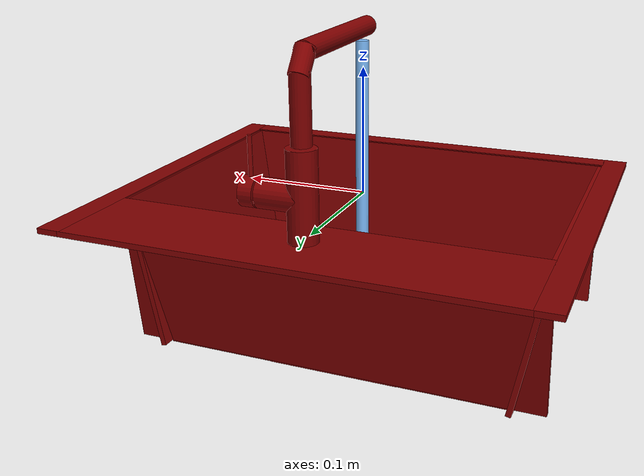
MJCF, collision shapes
<mujoco model="model">
  <compiler angle="radian"/>
  <asset>
    <mesh file="visuals/handle.obj" name="handle_vis"/>
    <mesh file="visuals/Body001.obj" name="Body001_vis"/>
    <mesh file="visuals/Funnel001.obj" name="Funnel001_vis"/>
    <mesh file="visuals/spout.obj" name="spout_vis"/>
    <texture file="visuals/T_BC001.png" name="Body001_material" type="2d"/>
    <material name="Body001_material" rgba="1 1 1 1.0" texture="Body001_material" shininess="0.4472135901451111" specular="0.3103448502657381"/>
    <texture file="visuals/T_BC001.png" name="handle_material" type="2d"/>
    <material name="handle_material" rgba="1 1 1 1.0" texture="handle_material" shininess="0.4472135901451111" specular="0.3103448502657381"/>
    <texture file="visuals/T_BC001.png" name="Funnel001_material" type="2d"/>
    <material name="Funnel001_material" rgba="1 1 1 1.0" texture="Funnel001_material" shininess="0.4472135901451111" specular="0.3103448502657381"/>
    <texture file="visuals/T_BC001.png" name="spout_material" type="2d"/>
    <material name="spout_material" rgba="1 1 1 1.0" texture="spout_material" shininess="0.4472135901451111" specular="0.3103448502657381"/>
  </asset>
  <default>
    <default class="visual">
      <geom conaffinity="0" contype="0" group="1" type="mesh"/>
    </default>
    <default class="collision">
      <geom group="0" rgba="0.5 0 0 0.5"/>
    </default>
    <default class="spawn">
      <geom group="0" rgba="1 1 1 0.5" contype="0" conaffinity="0"/>
      <site group="0" rgba="1 1 1 0.5"/>
    </default>
    <default class="region">
      <geom group="1" conaffinity="0" contype="0" rgba="0 1 0 0"/>
    </default>
  </default>
  <worldbody>
    <body>
      <body name="object">
        <geom mesh="Body001_vis" type="mesh" solimp="0.998 0.998 0.001" solref="0.001 1" density="100" friction="0.95 0.3 0.1" class="visual" material="Body001_material"/>
        <geom class="collision" type="box" pos="-0.154410 -0.030543 -0.062016" size="0.06288512796163559 0.11329737305641174 0.0021424531005322933" quat="0.7716148495674133 0.0 0.6360900402069092 0.0"/>
        <geom class="collision" type="box" pos="0.177042 -0.000145 -0.001555" size="0.009390519931912422 0.1600104421377182 0.002142419572919607" quat="1.0 0.0 0.0 0.0"/>
        <geom class="collision" type="box" pos="0.000644 0.120960 -0.001555" size="0.1686737984418869 0.038907241076231 0.0021424228325486183" quat="1.0 0.0 0.0 0.0"/>
        <geom class="collision" type="box" pos="0.000644 -0.151616 -0.001555" size="0.16867400705814362 0.008398536592721939 0.002142426325008273" quat="1.0 0.0 0.0 0.0"/>
        <geom class="collision" type="box" pos="-0.176915 -0.000145 -0.001555" size="0.00939055997878313 0.16001108288764954 0.0021424295846372843" quat="1.0 0.0 0.0 0.0"/>
        <geom class="collision" type="box" pos="0.154858 -0.030543 -0.062016" size="0.06288512796163559 0.11329737305641174 0.0021424531005322933" quat="0.7716148495674133 0.0 -0.6360900402069092 0.0"/>
        <geom class="collision" type="box" pos="0.000644 -0.135964 -0.061882" size="0.16867566108703613 0.0022713751532137394 0.06206813454627991" quat="0.9983983635902405 0.056574560701847076 0.0 0.0"/>
        <geom class="collision" type="box" pos="0.000644 0.077172 -0.061882" size="0.16867566108703613 0.0022713751532137394 0.06206813454627991" quat="0.9983983635902405 -0.05657455697655678 -0.0 0.0"/>
        <geom class="collision" type="box" pos="0.090019 -0.029524 -0.124575" size="0.05221371725201607 0.0998120829463005 0.0014360707718878984" quat="1.0 0.0 0.0 0.0"/>
        <geom class="collision" type="box" pos="-0.001799 0.056774 -0.124575" size="0.052213773131370544 0.013805895112454891 0.001436072401702404" quat="1.0 0.0 0.0 0.0"/>
        <geom class="collision" type="box" pos="-0.089840 -0.029524 -0.124575" size="0.05221382528543472 0.09981229156255722 0.0014360740315169096" quat="1.0 0.0 0.0 0.0"/>
        <geom class="collision" type="box" pos="-0.001799 -0.080082 -0.124575" size="0.0522138774394989 0.049254532903432846 0.001436075777746737" quat="1.0 0.0 0.0 0.0"/>
        <geom class="collision" type="cylinder" pos="0.015425 0.113107 0.032140" size="0.011124488897621632 0.01566363126039505" quat="0.7071068286895752 -0.0 0.7071067690849304 0.0"/>
        <geom class="collision" type="cylinder" pos="-0.000726 0.113107 0.033197" size="0.011124487966299057 0.03374015539884567" quat="1.0 0.0 0.0 0.0"/>
        <body name="handle">
          <joint axis="1.0 0.0 0.0" pos="0.037531 0.113109 0.032663" limited="true" name="handle_joint_hinge_0" type="hinge" range="-0.7853981633974483 0.7853981633974483" damping="1" frictionloss="1" armature=".01" stiffness="0.05"/>
          <joint axis="0.0 1.0 0.0" pos="0.037531 0.113109 0.032663" limited="true" name="handle_joint_hinge_1" type="hinge" range="0.0 0.08726646259971647" damping="1" frictionloss="1" armature=".01" stiffness="0.05"/>
          <geom mesh="handle_vis" type="mesh" solimp="0.998 0.998 0.001" solref="0.001 1" density="100" friction="0.95 0.3 0.1" class="visual" material="handle_material"/>
          <geom class="collision" type="cylinder" pos="0.037920 0.113107 0.032140" size="0.01112449076026678 0.005392112769186497" quat="0.7071068286895752 -0.0 0.7071067690849304 0.0"/>
          <geom class="collision" type="cylinder" pos="0.037933 0.112845 0.057313" size="0.0016544638201594353 0.014567042700946331" quat="1.0 0.0 0.0 0.0"/>
        </body>
        <body name="Funnel001">
          <joint axis="0.0 0.0 1.0" pos="0.000001 0.006565 -0.129478" limited="true" name="Funnel001_joint" range="0.0 0.05" type="slide" damping="1" frictionloss="1" armature=".01" stiffness="0.05"/>
          <geom mesh="Funnel001_vis" type="mesh" solimp="0.998 0.998 0.001" solref="0.001 1" density="100" friction="0.95 0.3 0.1" class="visual" material="Funnel001_material"/>
          <geom class="collision" type="cylinder" pos="0.000001 0.006565 -0.131101" size="0.03485992178320885 0.007883491925895214" quat="1.0 0.0 0.0 0.0"/>
        </body>
        <body name="spout">
          <joint axis="0.0 0.0 1.0" pos="-0.000634 0.113104 0.101031" limited="true" name="spout_joint" range="-0.7853981633974483 0.7853981633974483" type="hinge" damping="1" frictionloss="1" armature=".01" stiffness="0.05"/>
          <site type="cylinder" rgba="0.5 0.75 1 1" size="0.005057825706899166 0.12429643422365189" pos="-0.000701 0.004194 -0.003195" name="water"/>
          <geom mesh="spout_vis" type="mesh" solimp="0.998 0.998 0.001" solref="0.001 1" density="100" friction="0.95 0.3 0.1" class="visual" material="spout_material"/>
          <geom class="collision" type="cylinder" pos="-0.000622 0.112450 0.092948" size="0.0074004135094583035 0.025132793933153152" quat="1.0 0.0 0.0 0.0"/>
          <geom class="collision" type="cylinder" pos="-0.000622 0.050252 0.129954" size="0.007400413043797016 0.05608806014060974" quat="0.7122171521186829 0.7019591927528381 0.0 0.0"/>
          <geom class="collision" type="cylinder" pos="-0.000622 0.108460 0.123017" size="0.007400413043797016 0.010537994094192982" quat="0.9537169337272644 0.30070582032203674 0.0 0.0"/>
        </body>
        <geom class="region" name="reg_main" type="box" pos="0.0 0.0 -0.068201" size="0.186107 0.159647 0.069003"/>
        <geom class="region" name="reg_basin" type="box" pos="0.0009694999999999981 -0.0286975 -0.061046500000000004" size="0.16399750000000002 0.1112065 0.0578825"/>
      </body>
    </body>
  </worldbody>
  <actuator>
    <motor name="handle_joint_hinge_0_actuator" joint="handle_joint_hinge_0" gear="10"/>
    <motor name="handle_joint_hinge_1_actuator" joint="handle_joint_hinge_1" gear="10"/>
    <motor name="Funnel001_joint_actuator" joint="Funnel001_joint" gear="10"/>
    <motor name="spout_joint_actuator" joint="spout_joint" gear="10"/>
  </actuator>
</mujoco>
